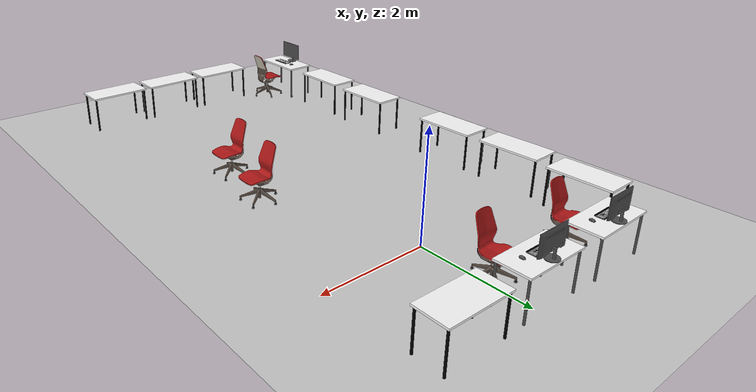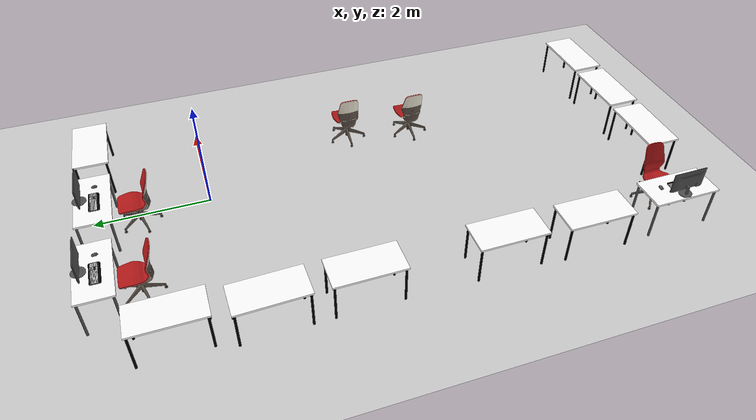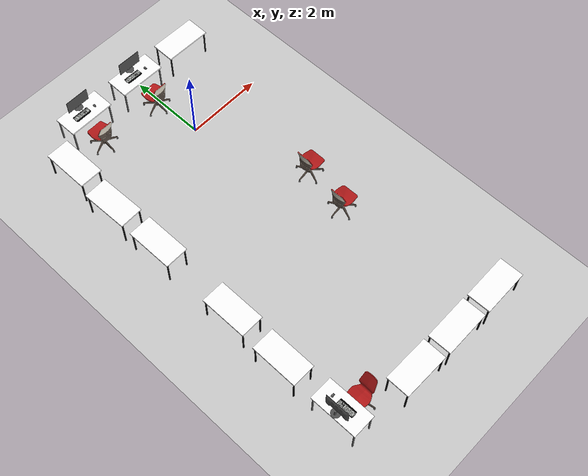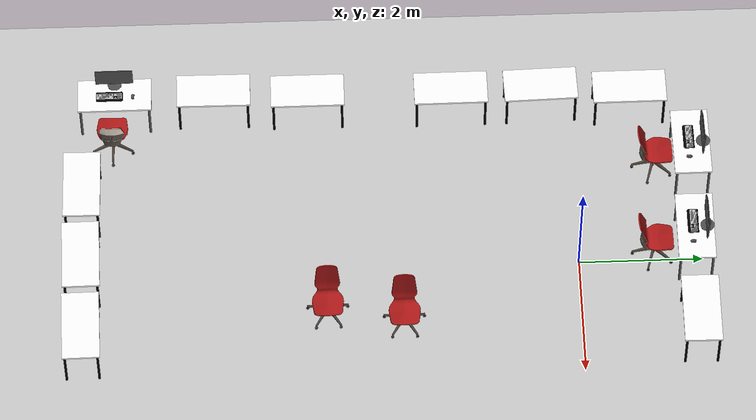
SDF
<sdf version="1.7">
 <world name="default">
  <model name="ground_plane">
   <static>1</static>
   <link name="link">
    <collision name="collision">
     <geometry><plane><normal>0 0 1</normal><size>100 100</size></plane></geometry>
     <surface>
      <contact><collide_bitmask>65535</collide_bitmask></contact>
      <friction><ode><mu>100</mu><mu2>50</mu2></ode></friction>
     </surface>
    </collision>
    <visual name="visual">
     <cast_shadows>0</cast_shadows>
     <geometry><plane><normal>0 0 1</normal><size>100 100</size></plane></geometry>
     <material>
      <script><uri>file://media/materials/scripts/gazebo.material</uri><name>Gazebo/Grey</name></script>
     </material>
    </visual>
   </link>
  </model>
  <model name="stol_i_komp_4">
   <link name="link_1">
    <inertial>
     <mass>1</mass>
     <inertia>
      <ixx>0.166667</ixx>
      <ixy>0</ixy>
      <ixz>0</ixz>
      <iyy>0.166667</iyy>
      <iyz>0</iyz>
      <izz>0.166667</izz>
     </inertia>
    </inertial>
    <visual name="visual">
     <geometry>
      <mesh>
       <uri>/home/slaven/catkin_ws/src/my_simulations/models/meshes/stol_i_komp.dae</uri>
       <scale>1 1 1</scale>
      </mesh>
     </geometry>
    </visual>
    <collision name="collision">
     <geometry>
      <mesh>
       <uri>/home/slaven/catkin_ws/src/my_simulations/models/meshes/stol_i_komp.dae</uri>
       <scale>1 1 1</scale>
      </mesh>
     </geometry>
     <surface>
      <friction>
       <ode><mu>1</mu><mu2>1</mu2><fdir1>0 0 0</fdir1><slip1>0</slip1><slip2>0</slip2></ode>
       <torsional>
        <coefficient>1</coefficient>
        <patch_radius>0</patch_radius>
        <surface_radius>0</surface_radius>
        <use_patch_radius>1</use_patch_radius>
        <ode><slip>0</slip></ode>
       </torsional>
      </friction>
      <bounce><restitution_coefficient>0</restitution_coefficient><threshold>1e+06</threshold></bounce>
      <contact>
       <collide_without_contact>0</collide_without_contact>
       <collide_without_contact_bitmask>1</collide_without_contact_bitmask>
       <collide_bitmask>1</collide_bitmask>
       <ode>
        <soft_cfm>0</soft_cfm>
        <soft_erp>0.2</soft_erp>
        <kp>1e+13</kp>
        <kd>1</kd>
        <max_vel>0.01</max_vel>
        <min_depth>0</min_depth>
       </ode>
       <bullet>
        <split_impulse>1</split_impulse>
        <split_impulse_penetration_threshold>-0.01</split_impulse_penetration_threshold>
        <soft_cfm>0</soft_cfm>
        <soft_erp>0.2</soft_erp>
        <kp>1e+13</kp>
        <kd>1</kd>
       </bullet>
      </contact>
     </surface>
    </collision>
   </link>
   <static>0</static>
   <pose>-0.18708 1.85961 0.699999 0 -2e-06 3.13569</pose>
  </model>
  <model name="stol_0">
   <link name="link_0">
    <inertial>
     <mass>1</mass>
     <inertia>
      <ixx>0.166667</ixx>
      <ixy>0</ixy>
      <ixz>0</ixz>
      <iyy>0.166667</iyy>
      <iyz>0</iyz>
      <izz>0.166667</izz>
     </inertia>
    </inertial>
    <visual name="visual">
     <geometry>
      <mesh><uri>/home/slaven/catkin_ws/src/my_simulations/models/meshes/stol.dae</uri><scale>1 1 1</scale></mesh>
     </geometry>
    </visual>
    <collision name="collision">
     <geometry>
      <mesh><uri>/home/slaven/catkin_ws/src/my_simulations/models/meshes/stol.dae</uri><scale>1 1 1</scale></mesh>
     </geometry>
     <surface>
      <friction>
       <ode><mu>1</mu><mu2>1</mu2><fdir1>0 0 0</fdir1><slip1>0</slip1><slip2>0</slip2></ode>
       <torsional>
        <coefficient>1</coefficient>
        <patch_radius>0</patch_radius>
        <surface_radius>0</surface_radius>
        <use_patch_radius>1</use_patch_radius>
        <ode><slip>0</slip></ode>
       </torsional>
      </friction>
      <bounce><restitution_coefficient>0</restitution_coefficient><threshold>1e+06</threshold></bounce>
      <contact>
       <collide_without_contact>0</collide_without_contact>
       <collide_without_contact_bitmask>1</collide_without_contact_bitmask>
       <collide_bitmask>1</collide_bitmask>
       <ode>
        <soft_cfm>0</soft_cfm>
        <soft_erp>0.2</soft_erp>
        <kp>1e+13</kp>
        <kd>1</kd>
        <max_vel>0.01</max_vel>
        <min_depth>0</min_depth>
       </ode>
       <bullet>
        <split_impulse>1</split_impulse>
        <split_impulse_penetration_threshold>-0.01</split_impulse_penetration_threshold>
        <soft_cfm>0</soft_cfm>
        <soft_erp>0.2</soft_erp>
        <kp>1e+13</kp>
        <kd>1</kd>
       </bullet>
      </contact>
     </surface>
    </collision>
   </link>
   <static>0</static>
   <pose>-3.03737 -5.84714 0.699999 1e-06 -1e-06 1.56576</pose>
  </model>
  <model name="stol_1">
   <link name="link_0">
    <inertial>
     <mass>1</mass>
     <inertia>
      <ixx>0.166667</ixx>
      <ixy>0</ixy>
      <ixz>0</ixz>
      <iyy>0.166667</iyy>
      <iyz>0</iyz>
      <izz>0.166667</izz>
     </inertia>
    </inertial>
    <visual name="visual">
     <geometry>
      <mesh><uri>/home/slaven/catkin_ws/src/my_simulations/models/meshes/stol.dae</uri><scale>1 1 1</scale></mesh>
     </geometry>
    </visual>
    <collision name="collision">
     <geometry>
      <mesh><uri>/home/slaven/catkin_ws/src/my_simulations/models/meshes/stol.dae</uri><scale>1 1 1</scale></mesh>
     </geometry>
     <surface>
      <friction>
       <ode><mu>1</mu><mu2>1</mu2><fdir1>0 0 0</fdir1><slip1>0</slip1><slip2>0</slip2></ode>
       <torsional>
        <coefficient>1</coefficient>
        <patch_radius>0</patch_radius>
        <surface_radius>0</surface_radius>
        <use_patch_radius>1</use_patch_radius>
        <ode><slip>0</slip></ode>
       </torsional>
      </friction>
      <bounce><restitution_coefficient>0</restitution_coefficient><threshold>1e+06</threshold></bounce>
      <contact>
       <collide_without_contact>0</collide_without_contact>
       <collide_without_contact_bitmask>1</collide_without_contact_bitmask>
       <collide_bitmask>1</collide_bitmask>
       <ode>
        <soft_cfm>0</soft_cfm>
        <soft_erp>0.2</soft_erp>
        <kp>1e+13</kp>
        <kd>1</kd>
        <max_vel>0.01</max_vel>
        <min_depth>0</min_depth>
       </ode>
       <bullet>
        <split_impulse>1</split_impulse>
        <split_impulse_penetration_threshold>-0.01</split_impulse_penetration_threshold>
        <soft_cfm>0</soft_cfm>
        <soft_erp>0.2</soft_erp>
        <kp>1e+13</kp>
        <kd>1</kd>
       </bullet>
      </contact>
     </surface>
    </collision>
   </link>
   <static>0</static>
   <pose>-2.98575 -4.3109 0.699999 0 -2e-06 1.57339</pose>
  </model>
  <model name="stol_2">
   <link name="link_0">
    <inertial>
     <mass>1</mass>
     <inertia>
      <ixx>0.166667</ixx>
      <ixy>0</ixy>
      <ixz>0</ixz>
      <iyy>0.166667</iyy>
      <iyz>0</iyz>
      <izz>0.166667</izz>
     </inertia>
    </inertial>
    <visual name="visual">
     <geometry>
      <mesh><uri>/home/slaven/catkin_ws/src/my_simulations/models/meshes/stol.dae</uri><scale>1 1 1</scale></mesh>
     </geometry>
    </visual>
    <collision name="collision">
     <geometry>
      <mesh><uri>/home/slaven/catkin_ws/src/my_simulations/models/meshes/stol.dae</uri><scale>1 1 1</scale></mesh>
     </geometry>
     <surface>
      <friction>
       <ode><mu>1</mu><mu2>1</mu2><fdir1>0 0 0</fdir1><slip1>0</slip1><slip2>0</slip2></ode>
       <torsional>
        <coefficient>1</coefficient>
        <patch_radius>0</patch_radius>
        <surface_radius>0</surface_radius>
        <use_patch_radius>1</use_patch_radius>
        <ode><slip>0</slip></ode>
       </torsional>
      </friction>
      <bounce><restitution_coefficient>0</restitution_coefficient><threshold>1e+06</threshold></bounce>
      <contact>
       <collide_without_contact>0</collide_without_contact>
       <collide_without_contact_bitmask>1</collide_without_contact_bitmask>
       <collide_bitmask>1</collide_bitmask>
       <ode>
        <soft_cfm>0</soft_cfm>
        <soft_erp>0.2</soft_erp>
        <kp>1e+13</kp>
        <kd>1</kd>
        <max_vel>0.01</max_vel>
        <min_depth>0</min_depth>
       </ode>
       <bullet>
        <split_impulse>1</split_impulse>
        <split_impulse_penetration_threshold>-0.01</split_impulse_penetration_threshold>
        <soft_cfm>0</soft_cfm>
        <soft_erp>0.2</soft_erp>
        <kp>1e+13</kp>
        <kd>1</kd>
       </bullet>
      </contact>
     </surface>
    </collision>
   </link>
   <static>0</static>
   <pose>-2.96415 -1.96662 0.699999 0 2e-06 -1.56358</pose>
  </model>
  <model name="stol_3">
   <link name="link_0">
    <inertial>
     <mass>1</mass>
     <inertia>
      <ixx>0.166667</ixx>
      <ixy>0</ixy>
      <ixz>0</ixz>
      <iyy>0.166667</iyy>
      <iyz>0</iyz>
      <izz>0.166667</izz>
     </inertia>
    </inertial>
    <visual name="visual">
     <geometry>
      <mesh><uri>/home/slaven/catkin_ws/src/my_simulations/models/meshes/stol.dae</uri><scale>1 1 1</scale></mesh>
     </geometry>
    </visual>
    <collision name="collision">
     <geometry>
      <mesh><uri>/home/slaven/catkin_ws/src/my_simulations/models/meshes/stol.dae</uri><scale>1 1 1</scale></mesh>
     </geometry>
     <surface>
      <friction>
       <ode><mu>1</mu><mu2>1</mu2><fdir1>0 0 0</fdir1><slip1>0</slip1><slip2>0</slip2></ode>
       <torsional>
        <coefficient>1</coefficient>
        <patch_radius>0</patch_radius>
        <surface_radius>0</surface_radius>
        <use_patch_radius>1</use_patch_radius>
        <ode><slip>0</slip></ode>
       </torsional>
      </friction>
      <bounce><restitution_coefficient>0</restitution_coefficient><threshold>1e+06</threshold></bounce>
      <contact>
       <collide_without_contact>0</collide_without_contact>
       <collide_without_contact_bitmask>1</collide_without_contact_bitmask>
       <collide_bitmask>1</collide_bitmask>
       <ode>
        <soft_cfm>0</soft_cfm>
        <soft_erp>0.2</soft_erp>
        <kp>1e+13</kp>
        <kd>1</kd>
        <max_vel>0.01</max_vel>
        <min_depth>0</min_depth>
       </ode>
       <bullet>
        <split_impulse>1</split_impulse>
        <split_impulse_penetration_threshold>-0.01</split_impulse_penetration_threshold>
        <soft_cfm>0</soft_cfm>
        <soft_erp>0.2</soft_erp>
        <kp>1e+13</kp>
        <kd>1</kd>
       </bullet>
      </contact>
     </surface>
    </collision>
   </link>
   <static>0</static>
   <pose>-2.98458 -0.496556 0.699999 0 2e-06 1.60049</pose>
  </model>
  <model name="stol_i_komp_6">
   <link name="link_1">
    <inertial>
     <mass>1</mass>
     <inertia>
      <ixx>0.166667</ixx>
      <ixy>0</ixy>
      <ixz>0</ixz>
      <iyy>0.166667</iyy>
      <iyz>0</iyz>
      <izz>0.166667</izz>
     </inertia>
    </inertial>
    <visual name="visual">
     <geometry>
      <mesh>
       <uri>/home/slaven/catkin_ws/src/my_simulations/models/meshes/stol_i_komp.dae</uri>
       <scale>1 1 1</scale>
      </mesh>
     </geometry>
    </visual>
    <collision name="collision">
     <geometry>
      <mesh>
       <uri>/home/slaven/catkin_ws/src/my_simulations/models/meshes/stol_i_komp.dae</uri>
       <scale>1 1 1</scale>
      </mesh>
     </geometry>
     <surface>
      <friction>
       <ode><mu>1</mu><mu2>1</mu2><fdir1>0 0 0</fdir1><slip1>0</slip1><slip2>0</slip2></ode>
       <torsional>
        <coefficient>1</coefficient>
        <patch_radius>0</patch_radius>
        <surface_radius>0</surface_radius>
        <use_patch_radius>1</use_patch_radius>
        <ode><slip>0</slip></ode>
       </torsional>
      </friction>
      <bounce><restitution_coefficient>0</restitution_coefficient><threshold>1e+06</threshold></bounce>
      <contact>
       <collide_without_contact>0</collide_without_contact>
       <collide_without_contact_bitmask>1</collide_without_contact_bitmask>
       <collide_bitmask>1</collide_bitmask>
       <ode>
        <soft_cfm>0</soft_cfm>
        <soft_erp>0.2</soft_erp>
        <kp>1e+13</kp>
        <kd>1</kd>
        <max_vel>0.01</max_vel>
        <min_depth>0</min_depth>
       </ode>
       <bullet>
        <split_impulse>1</split_impulse>
        <split_impulse_penetration_threshold>-0.01</split_impulse_penetration_threshold>
        <soft_cfm>0</soft_cfm>
        <soft_erp>0.2</soft_erp>
        <kp>1e+13</kp>
        <kd>1</kd>
       </bullet>
      </contact>
     </surface>
    </collision>
   </link>
   <static>0</static>
   <pose>-2.99482 -7.4602 0.699999 0 2e-06 -1.56543</pose>
  </model>
  <model name="stol_4">
   <link name="link_0">
    <inertial>
     <mass>1</mass>
     <inertia>
      <ixx>0.166667</ixx>
      <ixy>0</ixy>
      <ixz>0</ixz>
      <iyy>0.166667</iyy>
      <iyz>0</iyz>
      <izz>0.166667</izz>
     </inertia>
    </inertial>
    <visual name="visual">
     <geometry>
      <mesh><uri>/home/slaven/catkin_ws/src/my_simulations/models/meshes/stol.dae</uri><scale>1 1 1</scale></mesh>
     </geometry>
    </visual>
    <collision name="collision">
     <geometry>
      <mesh><uri>/home/slaven/catkin_ws/src/my_simulations/models/meshes/stol.dae</uri><scale>1 1 1</scale></mesh>
     </geometry>
     <surface>
      <friction>
       <ode><mu>1</mu><mu2>1</mu2><fdir1>0 0 0</fdir1><slip1>0</slip1><slip2>0</slip2></ode>
       <torsional>
        <coefficient>1</coefficient>
        <patch_radius>0</patch_radius>
        <surface_radius>0</surface_radius>
        <use_patch_radius>1</use_patch_radius>
        <ode><slip>0</slip></ode>
       </torsional>
      </friction>
      <bounce><restitution_coefficient>0</restitution_coefficient><threshold>1e+06</threshold></bounce>
      <contact>
       <collide_without_contact>0</collide_without_contact>
       <collide_without_contact_bitmask>1</collide_without_contact_bitmask>
       <collide_bitmask>1</collide_bitmask>
       <ode>
        <soft_cfm>0</soft_cfm>
        <soft_erp>0.2</soft_erp>
        <kp>1e+13</kp>
        <kd>1</kd>
        <max_vel>0.01</max_vel>
        <min_depth>0</min_depth>
       </ode>
       <bullet>
        <split_impulse>1</split_impulse>
        <split_impulse_penetration_threshold>-0.01</split_impulse_penetration_threshold>
        <soft_cfm>0</soft_cfm>
        <soft_erp>0.2</soft_erp>
        <kp>1e+13</kp>
        <kd>1</kd>
       </bullet>
      </contact>
     </surface>
    </collision>
   </link>
   <static>0</static>
   <pose>-2.89879 0.954753 0.699998 1e-06 4e-06 1.57652</pose>
  </model>
  <model name="stol_i_komp_7">
   <link name="link_1">
    <inertial>
     <mass>1</mass>
     <inertia>
      <ixx>0.166667</ixx>
      <ixy>0</ixy>
      <ixz>0</ixz>
      <iyy>0.166667</iyy>
      <iyz>0</iyz>
      <izz>0.166667</izz>
     </inertia>
    </inertial>
    <visual name="visual">
     <geometry>
      <mesh>
       <uri>/home/slaven/catkin_ws/src/my_simulations/models/meshes/stol_i_komp.dae</uri>
       <scale>1 1 1</scale>
      </mesh>
     </geometry>
    </visual>
    <collision name="collision">
     <geometry>
      <mesh>
       <uri>/home/slaven/catkin_ws/src/my_simulations/models/meshes/stol_i_komp.dae</uri>
       <scale>1 1 1</scale>
      </mesh>
     </geometry>
     <surface>
      <friction>
       <ode><mu>1</mu><mu2>1</mu2><fdir1>0 0 0</fdir1><slip1>0</slip1><slip2>0</slip2></ode>
       <torsional>
        <coefficient>1</coefficient>
        <patch_radius>0</patch_radius>
        <surface_radius>0</surface_radius>
        <use_patch_radius>1</use_patch_radius>
        <ode><slip>0</slip></ode>
       </torsional>
      </friction>
      <bounce><restitution_coefficient>0</restitution_coefficient><threshold>1e+06</threshold></bounce>
      <contact>
       <collide_without_contact>0</collide_without_contact>
       <collide_without_contact_bitmask>1</collide_without_contact_bitmask>
       <collide_bitmask>1</collide_bitmask>
       <ode>
        <soft_cfm>0</soft_cfm>
        <soft_erp>0.2</soft_erp>
        <kp>1e+13</kp>
        <kd>1</kd>
        <max_vel>0.01</max_vel>
        <min_depth>0</min_depth>
       </ode>
       <bullet>
        <split_impulse>1</split_impulse>
        <split_impulse_penetration_threshold>-0.01</split_impulse_penetration_threshold>
        <soft_cfm>0</soft_cfm>
        <soft_erp>0.2</soft_erp>
        <kp>1e+13</kp>
        <kd>1</kd>
       </bullet>
      </contact>
     </surface>
    </collision>
   </link>
   <static>0</static>
   <pose>-1.79447 1.89417 0.699999 0 2e-06 -3.13231</pose>
  </model>
  <model name="stol_5">
   <link name="link_0">
    <inertial>
     <mass>1</mass>
     <inertia>
      <ixx>0.166667</ixx>
      <ixy>0</ixy>
      <ixz>0</ixz>
      <iyy>0.166667</iyy>
      <iyz>0</iyz>
      <izz>0.166667</izz>
     </inertia>
    </inertial>
    <visual name="visual">
     <geometry>
      <mesh><uri>/home/slaven/catkin_ws/src/my_simulations/models/meshes/stol.dae</uri><scale>1 1 1</scale></mesh>
     </geometry>
    </visual>
    <collision name="collision">
     <geometry>
      <mesh><uri>/home/slaven/catkin_ws/src/my_simulations/models/meshes/stol.dae</uri><scale>1 1 1</scale></mesh>
     </geometry>
     <surface>
      <friction>
       <ode><mu>1</mu><mu2>1</mu2><fdir1>0 0 0</fdir1><slip1>0</slip1><slip2>0</slip2></ode>
       <torsional>
        <coefficient>1</coefficient>
        <patch_radius>0</patch_radius>
        <surface_radius>0</surface_radius>
        <use_patch_radius>1</use_patch_radius>
        <ode><slip>0</slip></ode>
       </torsional>
      </friction>
      <bounce><restitution_coefficient>0</restitution_coefficient><threshold>1e+06</threshold></bounce>
      <contact>
       <collide_without_contact>0</collide_without_contact>
       <collide_without_contact_bitmask>1</collide_without_contact_bitmask>
       <collide_bitmask>1</collide_bitmask>
       <ode>
        <soft_cfm>0</soft_cfm>
        <soft_erp>0.2</soft_erp>
        <kp>1e+13</kp>
        <kd>1</kd>
        <max_vel>0.01</max_vel>
        <min_depth>0</min_depth>
       </ode>
       <bullet>
        <split_impulse>1</split_impulse>
        <split_impulse_penetration_threshold>-0.01</split_impulse_penetration_threshold>
        <soft_cfm>0</soft_cfm>
        <soft_erp>0.2</soft_erp>
        <kp>1e+13</kp>
        <kd>1</kd>
       </bullet>
      </contact>
     </surface>
    </collision>
   </link>
   <static>0</static>
   <pose>1.34028 1.85941 0.699999 0 -2e-06 -0.008468</pose>
  </model>
  <model name="stolac_0">
   <link name="link_0">
    <inertial>
     <mass>1</mass>
     <inertia>
      <ixx>0.166667</ixx>
      <ixy>0</ixy>
      <ixz>0</ixz>
      <iyy>0.166667</iyy>
      <iyz>0</iyz>
      <izz>0.166667</izz>
     </inertia>
    </inertial>
    <pose>0 0 0 1.60577 -0 0</pose>
    <visual name="visual">
     <geometry>
      <mesh><uri>/home/slaven/catkin_ws/src/my_simulations/models/meshes/stolac.dae</uri><scale>1 1 1</scale></mesh>
     </geometry>
    </visual>
    <collision name="collision">
     <geometry>
      <mesh><uri>/home/slaven/catkin_ws/src/my_simulations/models/meshes/stolac.dae</uri><scale>1 1 1</scale></mesh>
     </geometry>
     <surface>
      <friction>
       <ode><mu>1</mu><mu2>1</mu2><fdir1>0 0 0</fdir1><slip1>0</slip1><slip2>0</slip2></ode>
       <torsional>
        <coefficient>1</coefficient>
        <patch_radius>0</patch_radius>
        <surface_radius>0</surface_radius>
        <use_patch_radius>1</use_patch_radius>
        <ode><slip>0</slip></ode>
       </torsional>
      </friction>
      <bounce><restitution_coefficient>0</restitution_coefficient><threshold>1e+06</threshold></bounce>
      <contact>
       <collide_without_contact>0</collide_without_contact>
       <collide_without_contact_bitmask>1</collide_without_contact_bitmask>
       <collide_bitmask>1</collide_bitmask>
       <ode>
        <soft_cfm>0</soft_cfm>
        <soft_erp>0.2</soft_erp>
        <kp>1e+13</kp>
        <kd>1</kd>
        <max_vel>0.01</max_vel>
        <min_depth>0</min_depth>
       </ode>
       <bullet>
        <split_impulse>1</split_impulse>
        <split_impulse_penetration_threshold>-0.01</split_impulse_penetration_threshold>
        <soft_cfm>0</soft_cfm>
        <soft_erp>0.2</soft_erp>
        <kp>1e+13</kp>
        <kd>1</kd>
       </bullet>
      </contact>
     </surface>
    </collision>
   </link>
   <static>0</static>
   <pose>-0.139113 1.20912 0.443999 -0.034976 2e-06 -3.13042</pose>
  </model>
  <model name="stolac_1">
   <link name="link_0">
    <inertial>
     <mass>1</mass>
     <inertia>
      <ixx>0.166667</ixx>
      <ixy>0</ixy>
      <ixz>0</ixz>
      <iyy>0.166667</iyy>
      <iyz>0</iyz>
      <izz>0.166667</izz>
     </inertia>
    </inertial>
    <pose>0 0 0 1.60577 -0 0</pose>
    <visual name="visual">
     <geometry>
      <mesh><uri>/home/slaven/catkin_ws/src/my_simulations/models/meshes/stolac.dae</uri><scale>1 1 1</scale></mesh>
     </geometry>
    </visual>
    <collision name="collision">
     <geometry>
      <mesh><uri>/home/slaven/catkin_ws/src/my_simulations/models/meshes/stolac.dae</uri><scale>1 1 1</scale></mesh>
     </geometry>
     <surface>
      <friction>
       <ode><mu>1</mu><mu2>1</mu2><fdir1>0 0 0</fdir1><slip1>0</slip1><slip2>0</slip2></ode>
       <torsional>
        <coefficient>1</coefficient>
        <patch_radius>0</patch_radius>
        <surface_radius>0</surface_radius>
        <use_patch_radius>1</use_patch_radius>
        <ode><slip>0</slip></ode>
       </torsional>
      </friction>
      <bounce><restitution_coefficient>0</restitution_coefficient><threshold>1e+06</threshold></bounce>
      <contact>
       <collide_without_contact>0</collide_without_contact>
       <collide_without_contact_bitmask>1</collide_without_contact_bitmask>
       <collide_bitmask>1</collide_bitmask>
       <ode>
        <soft_cfm>0</soft_cfm>
        <soft_erp>0.2</soft_erp>
        <kp>1e+13</kp>
        <kd>1</kd>
        <max_vel>0.01</max_vel>
        <min_depth>0</min_depth>
       </ode>
       <bullet>
        <split_impulse>1</split_impulse>
        <split_impulse_penetration_threshold>-0.01</split_impulse_penetration_threshold>
        <soft_cfm>0</soft_cfm>
        <soft_erp>0.2</soft_erp>
        <kp>1e+13</kp>
        <kd>1</kd>
       </bullet>
      </contact>
     </surface>
    </collision>
   </link>
   <static>0</static>
   <pose>-1.7988 1.29613 0.444 -0.034974 -0 -3.12677</pose>
  </model>
  <model name="stolac_2">
   <link name="link_0">
    <inertial>
     <mass>1</mass>
     <inertia>
      <ixx>0.166667</ixx>
      <ixy>0</ixy>
      <ixz>0</ixz>
      <iyy>0.166667</iyy>
      <iyz>0</iyz>
      <izz>0.166667</izz>
     </inertia>
    </inertial>
    <pose>0 0 0 1.60577 -0 0</pose>
    <visual name="visual">
     <geometry>
      <mesh><uri>/home/slaven/catkin_ws/src/my_simulations/models/meshes/stolac.dae</uri><scale>1 1 1</scale></mesh>
     </geometry>
    </visual>
    <collision name="collision">
     <geometry>
      <mesh><uri>/home/slaven/catkin_ws/src/my_simulations/models/meshes/stolac.dae</uri><scale>1 1 1</scale></mesh>
     </geometry>
     <surface>
      <friction>
       <ode><mu>1</mu><mu2>1</mu2><fdir1>0 0 0</fdir1><slip1>0</slip1><slip2>0</slip2></ode>
       <torsional>
        <coefficient>1</coefficient>
        <patch_radius>0</patch_radius>
        <surface_radius>0</surface_radius>
        <use_patch_radius>1</use_patch_radius>
        <ode><slip>0</slip></ode>
       </torsional>
      </friction>
      <bounce><restitution_coefficient>0</restitution_coefficient><threshold>1e+06</threshold></bounce>
      <contact>
       <collide_without_contact>0</collide_without_contact>
       <collide_without_contact_bitmask>1</collide_without_contact_bitmask>
       <collide_bitmask>1</collide_bitmask>
       <ode>
        <soft_cfm>0</soft_cfm>
        <soft_erp>0.2</soft_erp>
        <kp>1e+13</kp>
        <kd>1</kd>
        <max_vel>0.01</max_vel>
        <min_depth>0</min_depth>
       </ode>
       <bullet>
        <split_impulse>1</split_impulse>
        <split_impulse_penetration_threshold>-0.01</split_impulse_penetration_threshold>
        <soft_cfm>0</soft_cfm>
        <soft_erp>0.2</soft_erp>
        <kp>1e+13</kp>
        <kd>1</kd>
       </bullet>
      </contact>
     </surface>
    </collision>
   </link>
   <static>0</static>
   <pose>1.02556 -2.85467 0.444 -0.034973 -0 1.56713</pose>
  </model>
  <model name="stolac_3">
   <link name="link_0">
    <inertial>
     <mass>1</mass>
     <inertia>
      <ixx>0.166667</ixx>
      <ixy>0</ixy>
      <ixz>0</ixz>
      <iyy>0.166667</iyy>
      <iyz>0</iyz>
      <izz>0.166667</izz>
     </inertia>
    </inertial>
    <pose>0 0 0 1.60577 -0 0</pose>
    <visual name="visual">
     <geometry>
      <mesh><uri>/home/slaven/catkin_ws/src/my_simulations/models/meshes/stolac.dae</uri><scale>1 1 1</scale></mesh>
     </geometry>
    </visual>
    <collision name="collision">
     <geometry>
      <mesh><uri>/home/slaven/catkin_ws/src/my_simulations/models/meshes/stolac.dae</uri><scale>1 1 1</scale></mesh>
     </geometry>
     <surface>
      <friction>
       <ode><mu>1</mu><mu2>1</mu2><fdir1>0 0 0</fdir1><slip1>0</slip1><slip2>0</slip2></ode>
       <torsional>
        <coefficient>1</coefficient>
        <patch_radius>0</patch_radius>
        <surface_radius>0</surface_radius>
        <use_patch_radius>1</use_patch_radius>
        <ode><slip>0</slip></ode>
       </torsional>
      </friction>
      <bounce><restitution_coefficient>0</restitution_coefficient><threshold>1e+06</threshold></bounce>
      <contact>
       <collide_without_contact>0</collide_without_contact>
       <collide_without_contact_bitmask>1</collide_without_contact_bitmask>
       <collide_bitmask>1</collide_bitmask>
       <ode>
        <soft_cfm>0</soft_cfm>
        <soft_erp>0.2</soft_erp>
        <kp>1e+13</kp>
        <kd>1</kd>
        <max_vel>0.01</max_vel>
        <min_depth>0</min_depth>
       </ode>
       <bullet>
        <split_impulse>1</split_impulse>
        <split_impulse_penetration_threshold>-0.01</split_impulse_penetration_threshold>
        <soft_cfm>0</soft_cfm>
        <soft_erp>0.2</soft_erp>
        <kp>1e+13</kp>
        <kd>1</kd>
       </bullet>
      </contact>
     </surface>
    </collision>
   </link>
   <static>0</static>
   <pose>0.816062 -4.0754 0.444 -0.034974 -1e-06 1.58584</pose>
  </model>
  <model name="stolac_7">
   <link name="link_0">
    <inertial>
     <mass>1</mass>
     <inertia>
      <ixx>0.166667</ixx>
      <ixy>0</ixy>
      <ixz>0</ixz>
      <iyy>0.166667</iyy>
      <iyz>0</iyz>
      <izz>0.166667</izz>
     </inertia>
    </inertial>
    <pose>0 0 0 1.60577 -0 0</pose>
    <visual name="visual">
     <geometry>
      <mesh><uri>/home/slaven/catkin_ws/src/my_simulations/models/meshes/stolac.dae</uri><scale>1 1 1</scale></mesh>
     </geometry>
    </visual>
    <collision name="collision">
     <geometry>
      <mesh><uri>/home/slaven/catkin_ws/src/my_simulations/models/meshes/stolac.dae</uri><scale>1 1 1</scale></mesh>
     </geometry>
     <surface>
      <friction>
       <ode><mu>1</mu><mu2>1</mu2><fdir1>0 0 0</fdir1><slip1>0</slip1><slip2>0</slip2></ode>
       <torsional>
        <coefficient>1</coefficient>
        <patch_radius>0</patch_radius>
        <surface_radius>0</surface_radius>
        <use_patch_radius>1</use_patch_radius>
        <ode><slip>0</slip></ode>
       </torsional>
      </friction>
      <bounce><restitution_coefficient>0</restitution_coefficient><threshold>1e+06</threshold></bounce>
      <contact>
       <collide_without_contact>0</collide_without_contact>
       <collide_without_contact_bitmask>1</collide_without_contact_bitmask>
       <collide_bitmask>1</collide_bitmask>
       <ode>
        <soft_cfm>0</soft_cfm>
        <soft_erp>0.2</soft_erp>
        <kp>1e+13</kp>
        <kd>1</kd>
        <max_vel>0.01</max_vel>
        <min_depth>0</min_depth>
       </ode>
       <bullet>
        <split_impulse>1</split_impulse>
        <split_impulse_penetration_threshold>-0.01</split_impulse_penetration_threshold>
        <soft_cfm>0</soft_cfm>
        <soft_erp>0.2</soft_erp>
        <kp>1e+13</kp>
        <kd>1</kd>
       </bullet>
      </contact>
     </surface>
    </collision>
   </link>
   <static>0</static>
   <pose>-2.43704 -7.50867 0.444001 -0.03497 -3e-06 -1.59105</pose>
  </model>
  <model name="stol_9">
   <link name="link_0">
    <inertial>
     <mass>1</mass>
     <inertia>
      <ixx>0.166667</ixx>
      <ixy>0</ixy>
      <ixz>0</ixz>
      <iyy>0.166667</iyy>
      <iyz>0</iyz>
      <izz>0.166667</izz>
     </inertia>
    </inertial>
    <visual name="visual">
     <geometry>
      <mesh><uri>/home/slaven/catkin_ws/src/my_simulations/models/meshes/stol.dae</uri><scale>1 1 1</scale></mesh>
     </geometry>
    </visual>
    <collision name="collision">
     <geometry>
      <mesh><uri>/home/slaven/catkin_ws/src/my_simulations/models/meshes/stol.dae</uri><scale>1 1 1</scale></mesh>
     </geometry>
     <surface>
      <friction>
       <ode><mu>1</mu><mu2>1</mu2><fdir1>0 0 0</fdir1><slip1>0</slip1><slip2>0</slip2></ode>
       <torsional>
        <coefficient>1</coefficient>
        <patch_radius>0</patch_radius>
        <surface_radius>0</surface_radius>
        <use_patch_radius>1</use_patch_radius>
        <ode><slip>0</slip></ode>
       </torsional>
      </friction>
      <bounce><restitution_coefficient>0</restitution_coefficient><threshold>1e+06</threshold></bounce>
      <contact>
       <collide_without_contact>0</collide_without_contact>
       <collide_without_contact_bitmask>1</collide_without_contact_bitmask>
       <collide_bitmask>1</collide_bitmask>
       <ode>
        <soft_cfm>0</soft_cfm>
        <soft_erp>0.2</soft_erp>
        <kp>1e+13</kp>
        <kd>1</kd>
        <max_vel>0.01</max_vel>
        <min_depth>0</min_depth>
       </ode>
       <bullet>
        <split_impulse>1</split_impulse>
        <split_impulse_penetration_threshold>-0.01</split_impulse_penetration_threshold>
        <soft_cfm>0</soft_cfm>
        <soft_erp>0.2</soft_erp>
        <kp>1e+13</kp>
        <kd>1</kd>
       </bullet>
      </contact>
     </surface>
    </collision>
   </link>
   <static>0</static>
   <pose>0.01843 -8.01054 0.7 7e-06 1e-06 0.011109</pose>
  </model>
  <model name="stol_10">
   <link name="link_0">
    <inertial>
     <mass>1</mass>
     <inertia>
      <ixx>0.166667</ixx>
      <ixy>0</ixy>
      <ixz>0</ixz>
      <iyy>0.166667</iyy>
      <iyz>0</iyz>
      <izz>0.166667</izz>
     </inertia>
    </inertial>
    <visual name="visual">
     <geometry>
      <mesh><uri>/home/slaven/catkin_ws/src/my_simulations/models/meshes/stol.dae</uri><scale>1 1 1</scale></mesh>
     </geometry>
    </visual>
    <collision name="collision">
     <geometry>
      <mesh><uri>/home/slaven/catkin_ws/src/my_simulations/models/meshes/stol.dae</uri><scale>1 1 1</scale></mesh>
     </geometry>
     <surface>
      <friction>
       <ode><mu>1</mu><mu2>1</mu2><fdir1>0 0 0</fdir1><slip1>0</slip1><slip2>0</slip2></ode>
       <torsional>
        <coefficient>1</coefficient>
        <patch_radius>0</patch_radius>
        <surface_radius>0</surface_radius>
        <use_patch_radius>1</use_patch_radius>
        <ode><slip>0</slip></ode>
       </torsional>
      </friction>
      <bounce><restitution_coefficient>0</restitution_coefficient><threshold>1e+06</threshold></bounce>
      <contact>
       <collide_without_contact>0</collide_without_contact>
       <collide_without_contact_bitmask>1</collide_without_contact_bitmask>
       <collide_bitmask>1</collide_bitmask>
       <ode>
        <soft_cfm>0</soft_cfm>
        <soft_erp>0.2</soft_erp>
        <kp>1e+13</kp>
        <kd>1</kd>
        <max_vel>0.01</max_vel>
        <min_depth>0</min_depth>
       </ode>
       <bullet>
        <split_impulse>1</split_impulse>
        <split_impulse_penetration_threshold>-0.01</split_impulse_penetration_threshold>
        <soft_cfm>0</soft_cfm>
        <soft_erp>0.2</soft_erp>
        <kp>1e+13</kp>
        <kd>1</kd>
       </bullet>
      </contact>
     </surface>
    </collision>
   </link>
   <static>0</static>
   <pose>-1.30367 -7.99508 0.699999 0 -2e-06 -0.010336</pose>
  </model>
  <model name="stol_11">
   <link name="link_0">
    <inertial>
     <mass>1</mass>
     <inertia>
      <ixx>0.166667</ixx>
      <ixy>0</ixy>
      <ixz>0</ixz>
      <iyy>0.166667</iyy>
      <iyz>0</iyz>
      <izz>0.166667</izz>
     </inertia>
    </inertial>
    <visual name="visual">
     <geometry>
      <mesh><uri>/home/slaven/catkin_ws/src/my_simulations/models/meshes/stol.dae</uri><scale>1 1 1</scale></mesh>
     </geometry>
    </visual>
    <collision name="collision">
     <geometry>
      <mesh><uri>/home/slaven/catkin_ws/src/my_simulations/models/meshes/stol.dae</uri><scale>1 1 1</scale></mesh>
     </geometry>
     <surface>
      <friction>
       <ode><mu>1</mu><mu2>1</mu2><fdir1>0 0 0</fdir1><slip1>0</slip1><slip2>0</slip2></ode>
       <torsional>
        <coefficient>1</coefficient>
        <patch_radius>0</patch_radius>
        <surface_radius>0</surface_radius>
        <use_patch_radius>1</use_patch_radius>
        <ode><slip>0</slip></ode>
       </torsional>
      </friction>
      <bounce><restitution_coefficient>0</restitution_coefficient><threshold>1e+06</threshold></bounce>
      <contact>
       <collide_without_contact>0</collide_without_contact>
       <collide_without_contact_bitmask>1</collide_without_contact_bitmask>
       <collide_bitmask>1</collide_bitmask>
       <ode>
        <soft_cfm>0</soft_cfm>
        <soft_erp>0.2</soft_erp>
        <kp>1e+13</kp>
        <kd>1</kd>
        <max_vel>0.01</max_vel>
        <min_depth>0</min_depth>
       </ode>
       <bullet>
        <split_impulse>1</split_impulse>
        <split_impulse_penetration_threshold>-0.01</split_impulse_penetration_threshold>
        <soft_cfm>0</soft_cfm>
        <soft_erp>0.2</soft_erp>
        <kp>1e+13</kp>
        <kd>1</kd>
       </bullet>
      </contact>
     </surface>
    </collision>
   </link>
   <static>0</static>
   <pose>1.33798 -8.00881 0.699999 -0 -2e-06 0.014789</pose>
  </model>
 </world>
</sdf>
